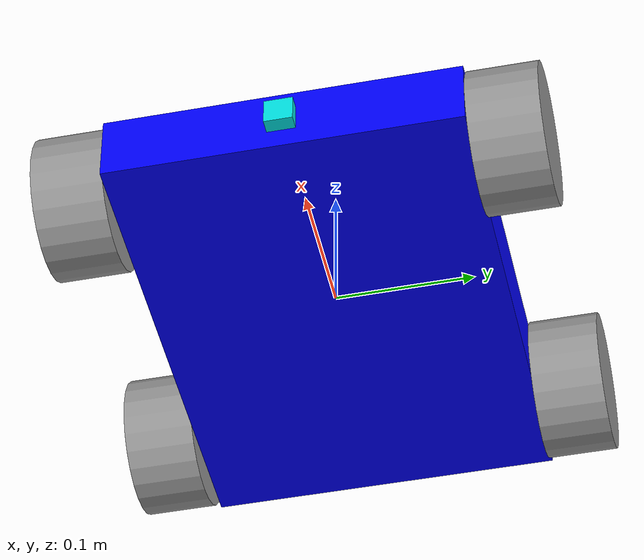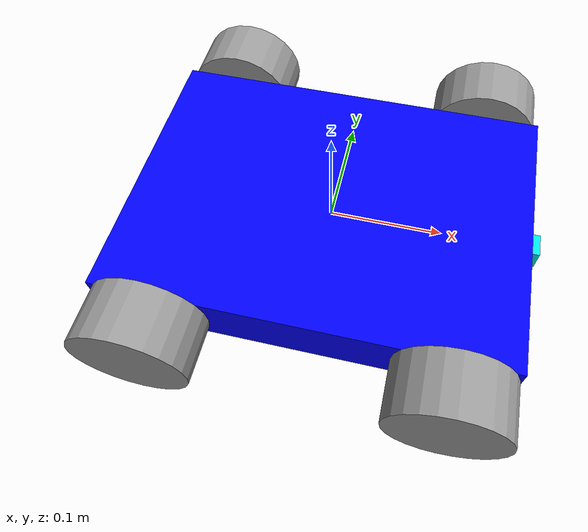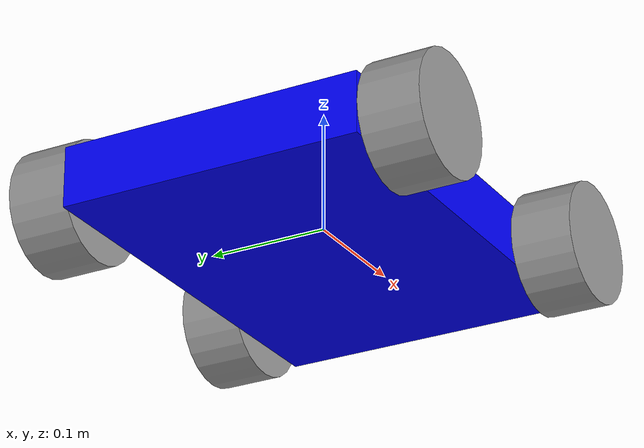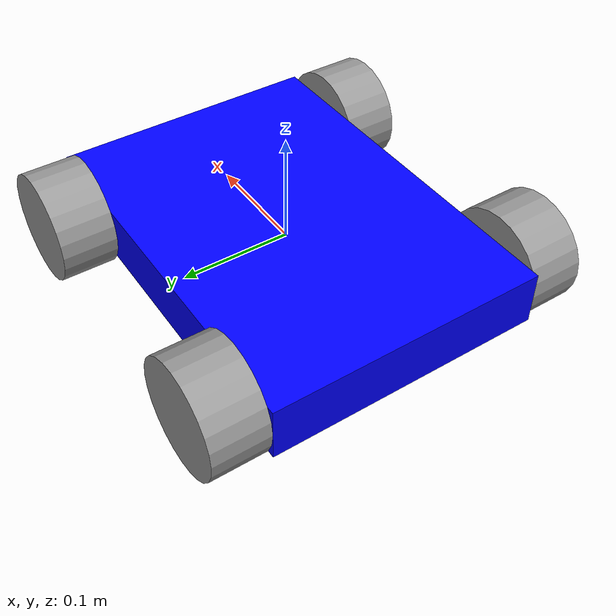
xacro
<?xml version="1.0"?>
<robot name="mobile" xmlns:xacro="http://www.ros.org/wiki/xacro">

    <xacro:include filename="$(find two_links)/urdf/mobile_gazebo.gazebo"/>

    <link name="robot_footprint"></link>
    <joint name="robot_footprint_joint" type="fixed">
		<origin xyz="0 0 0" rpy="0 0 0" />
		<parent link="robot_footprint"/>
		<child link="base_link" />
	</joint>

    <link name="base_link">
    <visual>
        <geometry>
            <box size="0.35 0.25 0.05"/>
        </geometry>
        <origin rpy="0 0 0" xyz="0 0 0"/>
        <material name="blue">
            <color rgba = "0 0 1 1"/>
        </material>
    </visual>
    <collision>
        <origin xyz="0 0 0" rpy="0 0 0"/>
        <geometry>
            <box size="0.35 0.25 0.05"/>
        </geometry>
    </collision>
    <inertial>
        <origin xyz="0 0 0" rpy="0 0 0"/>
        <mass value="6"/>
        <inertia
            ixx="0.1" ixy="0.0" ixz="0.0"
            iyy="0.1" iyz="0.0"
            izz="0.1"/>
    </inertial>
    </link>

    <!--front left wheel-->

    <link name="wheel_1_link">
    <visual>
        <geometry>
            <cylinder length="0.05" radius="0.05"/>
        </geometry>
        <origin rpy="0 0 0" xyz="0 0 0"/>
    </visual>
    <collision>
        <origin xyz="0 0 0" rpy="0 0 0"/>
        <geometry>
        <cylinder radius="0.05" length="0.05"/>
        </geometry>
    </collision>
    <inertial>
        <origin xyz="0 0 0" rpy="0 0 0"/>
        <mass value="0.5"/>
    <inertia
        ixx="0.000416" ixy="0.0" ixz="0.0"
        iyy="0.000416" iyz="0.0"
        izz="0.000625"/>
    </inertial>
    </link>

    <joint name="base_to_wheel_1" type="continuous">
        <parent link="base_link"/>
        <child link="wheel_1_link"/>
        <origin rpy = "1.57 0 0" xyz = "0.125 0.150 0.0"/>
        <axis xyz = "0 0 1"/>
        <dynamics damping="1.0" friction="1.0"/>
        <limit effort = "1000" velocity = "1000"/>
    </joint>

    <!--rear right wheel-->

    <link name="wheel_2_link">
    <visual>
        <geometry>
            <cylinder length="0.05" radius="0.05"/>
        </geometry>
        <origin rpy="0 0 0" xyz="0 0 0"/>
    </visual>
    <collision>
        <origin xyz="0 0 0" rpy="0 0 0"/>
        <geometry>
        <cylinder radius="0.05" length="0.05"/>
        </geometry>
    </collision>
    <inertial>
        <origin xyz="0 0 0" rpy="0 0 0"/>
        <mass value="0.5"/>
    <inertia
        ixx="0.000416" ixy="0.0" ixz="0.0"
        iyy="0.000416" iyz="0.0"
        izz="0.000625"/>
    </inertial>
    </link>

    <joint name="base_to_wheel_2" type="continuous">
        <parent link="base_link"/>
        <child link="wheel_2_link"/>
        <origin rpy = "1.57 0 0" xyz = "-0.125 -0.150 0.0"/>
        <axis xyz = "0 0 1"/>
        <dynamics damping="1.0" friction="1.0"/>
        <limit effort = "1000" velocity = "1000"/>
    </joint>

    <!--front right wheel-->

    <link name="wheel_3_link">
    <visual>
        <geometry>
            <cylinder length="0.05" radius="0.05"/>
        </geometry>
        <origin rpy="0 0 0" xyz="0 0 0"/>
    </visual>
    <collision>
        <origin xyz="0 0 0" rpy="0 0 0"/>
        <geometry>
        <cylinder radius="0.05" length="0.05"/>
        </geometry>
    </collision>
    <inertial>
        <origin xyz="0 0 0" rpy="0 0 0"/>
        <mass value="0.5"/>
    <inertia
        ixx="0.000416" ixy="0.0" ixz="0.0"
        iyy="0.000416" iyz="0.0"
        izz="0.000625"/>
    </inertial>
    </link>

    <joint name="base_to_wheel_3" type="continuous">
        <parent link="base_link"/>
        <child link="wheel_3_link"/>
        <origin rpy = "1.57 0 0" xyz = "-0.125 0.15 0"/>
        <axis xyz = "0 0 1"/>
        <dynamics damping="1.0" friction="1.0"/>
        <limit effort = "1000" velocity = "1000"/>
    </joint>

    <!--rear left wheel-->

    <link name="wheel_4_link">
    <visual>
        <geometry>
            <cylinder length="0.05" radius="0.05"/>
        </geometry>
        <origin rpy="0 0 0" xyz="0 0 0"/>
    </visual>
    <collision>
        <origin xyz="0 0 0" rpy="0 0 0"/>
        <geometry>
        <cylinder radius="0.05" length="0.05"/>
        </geometry>
    </collision>
    <inertial>
        <origin xyz="0 0 0" rpy="0 0 0"/>
        <mass value="0.5"/>
    <inertia
        ixx="0.000416" ixy="0.0" ixz="0.0"
        iyy="0.000416" iyz="0.0"
        izz="0.000625"/>
    </inertial>
    </link>

    <joint name="base_to_wheel_4" type="continuous">
        <parent link="base_link"/>
        <child link="wheel_4_link"/>
        <origin rpy = "1.57 0 0" xyz = "0.125 -0.150 0.0"/>
        <axis xyz = "0 0 1"/>
        <dynamics damping="1.0" friction="1.0"/>
        <limit effort = "1000" velocity = "1000"/>
    </joint>

    <!--camera-->
    <link name="camera_link">
    <visual>
        <origin xyz="0 0 0" rpy="0 0 0"/>
        <geometry>
            <box size="0.02 0.02 0.02"/>
        </geometry>
        <material name="Cyan1">
        <color rgba="0 0.9 0.9 1.0"/>
        </material>
    </visual>
    <collision>
        <origin xyz="0 0 0" rpy="0 0 0"/>
        <geometry>
        <box size="0.02 0.02 0.02"/>
    </geometry>
    </collision>
    <inertial>
        <origin xyz="0 0 0" rpy="0 0 0"/>
            <mass value="0.5"/>
        <inertia
        ixx="0.1" ixy="0.0" ixz="0.0"
        iyy="0.1" iyz="0.0"
        izz="0.1"/>
    </inertial>
    </link>

    <joint name="camera_to_base" type="fixed">
        <limit effort="1000.0" lower="-3.14" upper="3.14" velocity="0.5"/>
        <origin rpy="0 0 0" xyz="0.175 0 0"/>
        <parent link="base_link"/>
        <child link="camera_link"/>
    </joint>

    <transmission name="front_left_wheel_transmission">
    <type>transmission_interface/SimpleTransmission</type>
    <joint name="base_to_wheel_1">
      <hardwareInterface>hardware_interface/EffortJointInterface</hardwareInterface>
    </joint>
    <actuator name="front_left_motor">
      <hardwareInterface>hardware_interface/EffortJointInterface</hardwareInterface>
      <mechanicalReduction>1</mechanicalReduction>
    </actuator>
    </transmission>

    <transmission name="rear_right_wheel_transmission">
    <type>transmission_interface/SimpleTransmission</type>
    <joint name="base_to_wheel_2">
      <hardwareInterface>hardware_interface/EffortJointInterface</hardwareInterface>
    </joint>
    <actuator name="rear_right_motor">
      <hardwareInterface>hardware_interface/EffortJointInterface</hardwareInterface>
      <mechanicalReduction>1</mechanicalReduction>
    </actuator>
    </transmission>

     <transmission name="front_right_wheel_transmission">
    <type>transmission_interface/SimpleTransmission</type>
    <joint name="base_to_wheel_3">
      <hardwareInterface>hardware_interface/EffortJointInterface</hardwareInterface>
    </joint>
    <actuator name="front_right_motor">
      <hardwareInterface>hardware_interface/EffortJointInterface</hardwareInterface>
      <mechanicalReduction>1</mechanicalReduction>
    </actuator>
    </transmission>

    <transmission name="rear_left_wheel_transmission">
    <type>transmission_interface/SimpleTransmission</type>
    <joint name="base_to_wheel_4">
      <hardwareInterface>hardware_interface/EffortJointInterface</hardwareInterface>
    </joint>
    <actuator name="rear_left_motor">
      <hardwareInterface>hardware_interface/EffortJointInterface</hardwareInterface>
      <mechanicalReduction>1</mechanicalReduction>
    </actuator>
    </transmission>

</robot>
